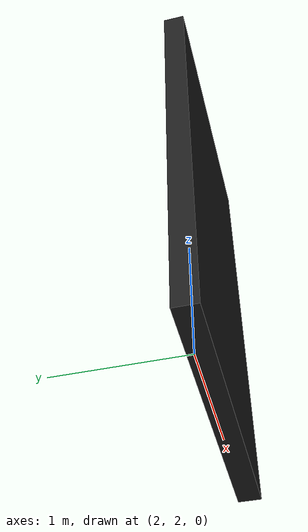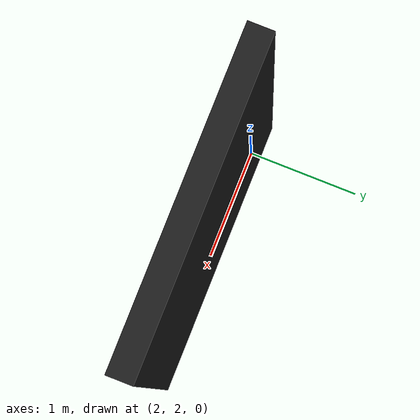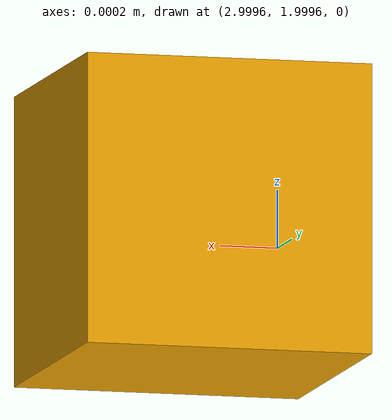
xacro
<robot xmlns:xacro="http://www.ros.org/wiki/xacro" name="test_model">

  <!-- root link, on the ground just below the model origin -->
  <link name="base_footprint">
   <visual>
      <origin xyz="3 2 0" rpy="0 0 0" />
      <geometry>
        <box size="0.001 0.001 0.001" />
      </geometry>
    </visual>
  </link>

  <joint name="base_link_joint" type="fixed">
    <origin xyz="3.0 2 2.2" rpy="0 0 0" />
    <parent link="base_footprint"/>
    <child link="base_link" />
  </joint>

  <!-- the model -->
  <link name="base_link">
    <inertial>
      <mass value="50" />
      <origin xyz="3.2 2.2 0" />
      <inertia ixx="50.0" ixy="0.0" ixz="0.0"
        iyy="50.0" iyz="0.0"
        izz="50.0" />
    </inertial>
    <visual>
      <geometry>
        <box size="2.5 0.2 4" /> <!-- does not need to match collision -->
      </geometry>
    </visual>
    <collision>
      <geometry>
        <box size="2.5 0.2 4" />
      </geometry>
    </collision>
  </link>

  <gazebo>
    <plugin name="object_controller" filename="libgazebo_ros_planar_move.so">
      <commandTopic>box_cmd_vel</commandTopic>
      <odometryTopic>odom</odometryTopic>
      <odometryFrame>odom</odometryFrame>
      <odometryRate>20.0</odometryRate>
      <robotBaseFrame>base_footprint</robotBaseFrame>
    </plugin>
  </gazebo>

  <gazebo reference="base_footprint">
   <turnGravityOff>true</turnGravityOff>
  </gazebo>

  <xacro:macro name="gazebo_material" params="ref color">
    <gazebo reference="${ref}">
      <material>Gazebo/${color}</material>
    </gazebo>
  </xacro:macro>

  <xacro:gazebo_material ref="base_link"  color="Black" />

</robot>
